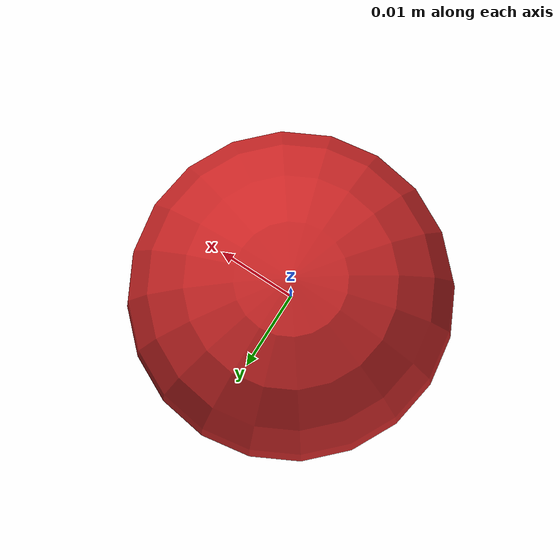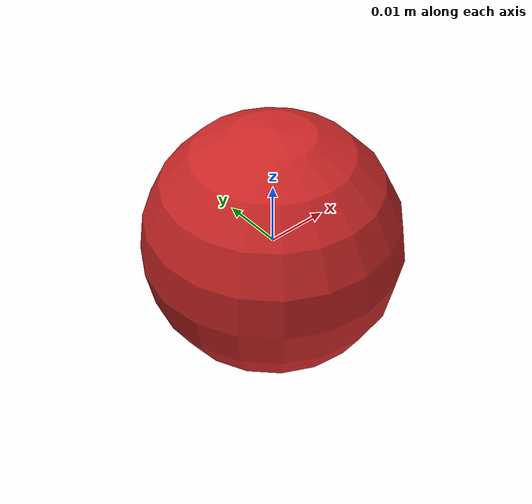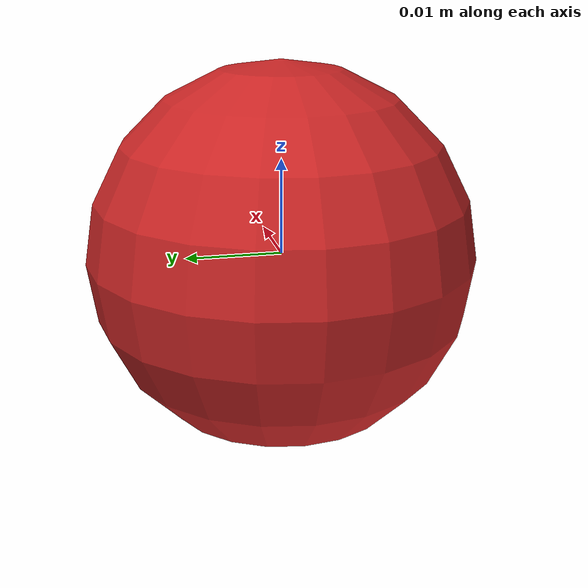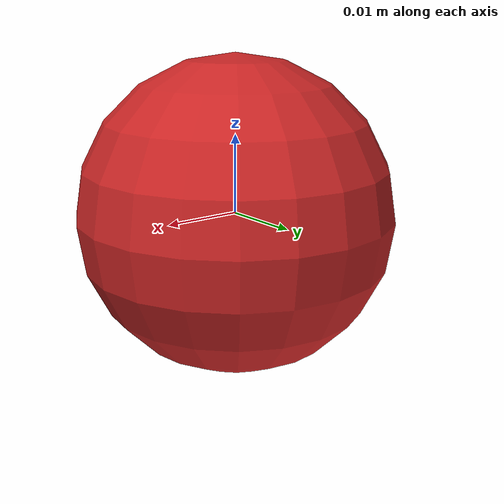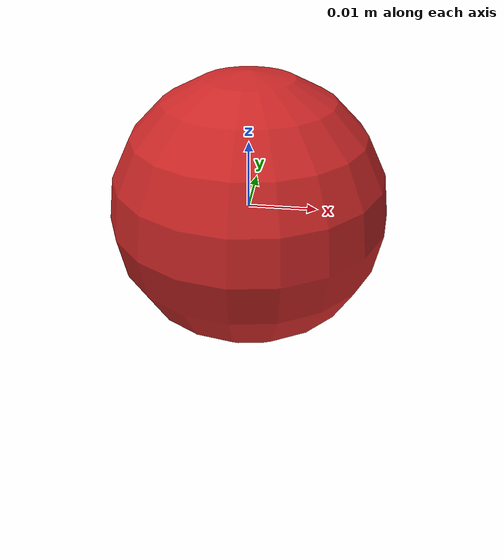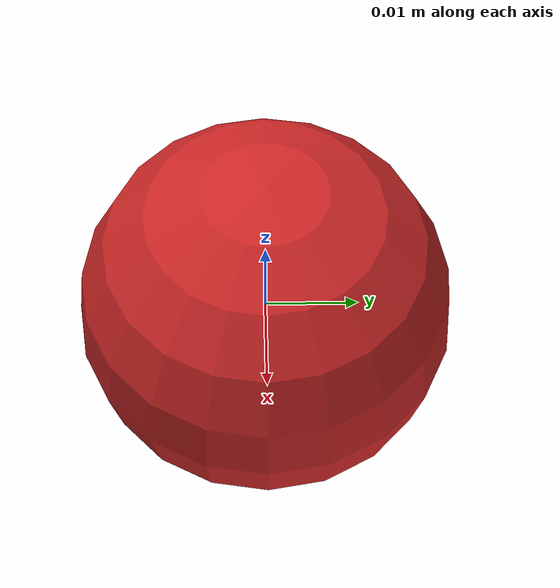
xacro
<?xml version="1.0"?>
<robot name="markers" xmlns:xacro="http://www.ros.org/wiki/xacro">

  <!-- Import shared components -->
  <xacro:include filename="$(find robot_sim)/urdf/shared.xacro" />

  <!-- Base link -->
  <link name="world"/>

  <!-- Red -->
  <joint name="marker_red_joint" type="fixed">
    <parent link="world"/>
    <child link="marker_red"/>
  </joint>

  <link name="marker_red">
    <visual>
      <origin xyz="0 0 0" rpy="0 0 0"/>
      <geometry>
	      <sphere radius="${marker_point_radius}" />
      </geometry>
      <material name="red"/>
    </visual>

    <inertial>
      <origin xyz="0 0 0" rpy="0 0 0"/>
      <mass value="1.0"/>
      <inertia
        ixx="1.0" ixy="0.0" ixz="0.0"
        iyy="1.0" iyz="0.0"
        izz="1.0"/>
    </inertial>
  </link>

  <gazebo reference="marker_red">
    <material>Gazebo/Red</material>
  </gazebo>

  <!-- Green -->
  <joint name="marker_green_joint" type="fixed">
    <parent link="world"/>
    <child link="marker_green"/>
  </joint>

  <link name="marker_green">
    <visual>
      <origin xyz="0 0 0" rpy="0 0 0"/>
      <geometry>
	      <sphere radius="${marker_point_radius}" />
      </geometry>
      <material name="green"/>
    </visual>

    <inertial>
      <origin xyz="0 0 0" rpy="0 0 0"/>
      <mass value="1.0"/>
      <inertia
        ixx="1.0" ixy="0.0" ixz="0.0"
        iyy="1.0" iyz="0.0"
        izz="1.0"/>
    </inertial>
  </link>

  <gazebo reference="marker_green">
    <material>Gazebo/Green</material>
  </gazebo>

</robot>

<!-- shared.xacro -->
<robot xmlns:xacro="http://www.ros.org/wiki/xacro">

  <!-- Import Rviz colors -->
  <xacro:include filename="$(find robot_sim)/urdf/materials.xacro" />

  <!-- Math constants -->
  <xacro:property name="PI" value="3.1415926535897931"/>

  <!-- Sensor parameters -->
  <xacro:property name="sensor_update_rate" value="50.0"/>

  <!-- Marker parameters -->
  <xacro:property name="marker_point_radius" value="0.02"/>

</robot>
